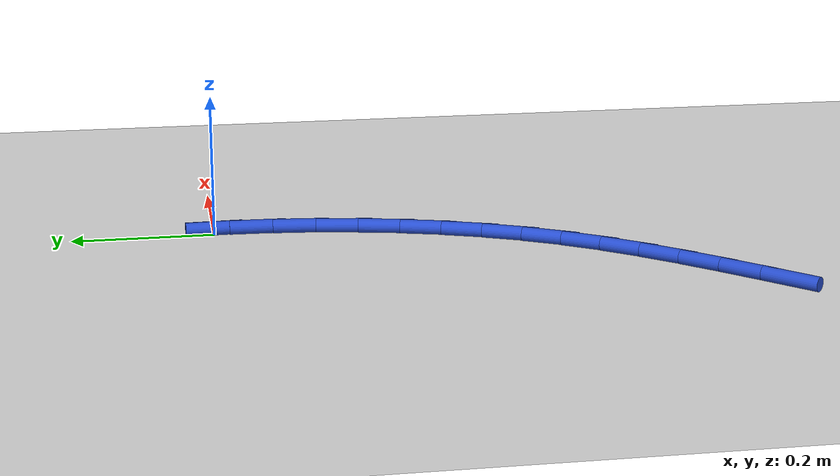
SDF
<sdf version="1.6">
 <world name="default">
  <model name="ground_plane">
   <static>1</static>
   <link name="link">
    <collision name="collision">
     <geometry><plane><normal>0 0 1</normal><size>100 100</size></plane></geometry>
     <surface><friction><ode><mu>100</mu><mu2>50</mu2></ode></friction></surface>
    </collision>
    <visual name="visual">
     <cast_shadows>0</cast_shadows>
     <geometry><plane><normal>0 0 1</normal><size>100 100</size></plane></geometry>
     <material>
      <script><uri>file://media/materials/scripts/gazebo.material</uri><name>Gazebo/WhiteGlow</name></script>
     </material>
    </visual>
   </link>
  </model>
  <model name="line">
   <link name="link_0">
    <pose>-1.3877787807814457e-17 5.551115123125783e-17 0.01 0 1.57 -1.5364739453692011</pose>
    <collision name="collision">
     <geometry><cylinder><radius>0.01</radius><length>0.08</length></cylinder></geometry>
    </collision>
    <visual name="visual">
     <material>
      <script><name>Gazebo/Blue</name><uri>file://media/materials/scripts/gazebo.material</uri></script>
     </material>
     <geometry><cylinder><radius>0.01</radius><length>0.08</length></cylinder></geometry>
    </visual>
   </link>
   <link name="link_116">
    <pose>-0.3409815144277638 -0.7309561444324738 0.01 0 1.57 0.785027971869206</pose>
    <collision name="collision">
     <geometry><cylinder><radius>0.01</radius><length>0.08</length></cylinder></geometry>
    </collision>
    <visual name="visual">
     <material>
      <script><name>Gazebo/Blue</name><uri>file://media/materials/scripts/gazebo.material</uri></script>
     </material>
     <geometry><cylinder><radius>0.01</radius><length>0.08</length></cylinder></geometry>
    </visual>
   </link>
   <link name="link_117">
    <pose>-0.29815786463319305 -0.6881641888111611 0.01 0 1.57 0.7992916494838977</pose>
    <collision name="collision">
     <geometry><cylinder><radius>0.01</radius><length>0.08</length></cylinder></geometry>
    </collision>
    <visual name="visual">
     <material>
      <script><name>Gazebo/Blue</name><uri>file://media/materials/scripts/gazebo.material</uri></script>
     </material>
     <geometry><cylinder><radius>0.01</radius><length>0.08</length></cylinder></geometry>
    </visual>
   </link>
   <link name="link_118">
    <pose>-0.2565358636151736 -0.6453692669798763 0.01 0 1.57 0.8276554505390632</pose>
    <collision name="collision">
     <geometry><cylinder><radius>0.01</radius><length>0.08</length></cylinder></geometry>
    </collision>
    <visual name="visual">
     <material>
      <script><name>Gazebo/Blue</name><uri>file://media/materials/scripts/gazebo.material</uri></script>
     </material>
     <geometry><cylinder><radius>0.01</radius><length>0.08</length></cylinder></geometry>
    </visual>
   </link>
   <link name="link_119">
    <pose>-0.21667283808898158 -0.601986400542989 0.01 0 1.57 0.8705613652888919</pose>
    <collision name="collision">
     <geometry><cylinder><radius>0.01</radius><length>0.08</length></cylinder></geometry>
    </collision>
    <visual name="visual">
     <material>
      <script><name>Gazebo/Blue</name><uri>file://media/materials/scripts/gazebo.material</uri></script>
     </material>
     <geometry><cylinder><radius>0.01</radius><length>0.08</length></cylinder></geometry>
    </visual>
   </link>
   <link name="link_120">
    <pose>-0.17912611476989115 -0.5574306111048666 0.01 0 1.57 0.928154938601592</pose>
    <collision name="collision">
     <geometry><cylinder><radius>0.01</radius><length>0.08</length></cylinder></geometry>
    </collision>
    <visual name="visual">
     <material>
      <script><name>Gazebo/Blue</name><uri>file://media/materials/scripts/gazebo.material</uri></script>
     </material>
     <geometry><cylinder><radius>0.01</radius><length>0.08</length></cylinder></geometry>
    </visual>
   </link>
   <link name="link_121">
    <pose>-0.14445302037317725 -0.511116920269877 0.01 0 1.57 0.9999980654008124</pose>
    <collision name="collision">
     <geometry><cylinder><radius>0.01</radius><length>0.08</length></cylinder></geometry>
    </collision>
    <visual name="visual">
     <material>
      <script><name>Gazebo/Blue</name><uri>file://media/materials/scripts/gazebo.material</uri></script>
     </material>
     <geometry><cylinder><radius>0.01</radius><length>0.08</length></cylinder></geometry>
    </visual>
   </link>
   <link name="link_122">
    <pose>-0.11321087203667296 -0.4624603641570693 0.01 0 1.57 1.0815209342898502</pose>
    <collision name="collision">
     <geometry><cylinder><radius>0.01</radius><length>0.08</length></cylinder></geometry>
    </collision>
    <visual name="visual">
     <material>
      <script><name>Gazebo/Blue</name><uri>file://media/materials/scripts/gazebo.material</uri></script>
     </material>
     <geometry><cylinder><radius>0.01</radius><length>0.08</length></cylinder></geometry>
    </visual>
   </link>
   <link name="link_123">
    <pose>-0.08583931838538295 -0.41105430635093343 0.01 0 1.57 1.1603506111646784</pose>
    <collision name="collision">
     <geometry><cylinder><radius>0.01</radius><length>0.08</length></cylinder></geometry>
    </collision>
    <visual name="visual">
     <material>
      <script><name>Gazebo/Blue</name><uri>file://media/materials/scripts/gazebo.material</uri></script>
     </material>
     <geometry><cylinder><radius>0.01</radius><length>0.08</length></cylinder></geometry>
    </visual>
   </link>
   <link name="link_124">
    <pose>-0.06236701342355382 -0.3571149756976084 0.01 0 1.57 1.2342498003687816</pose>
    <collision name="collision">
     <geometry><cylinder><radius>0.01</radius><length>0.08</length></cylinder></geometry>
    </collision>
    <visual name="visual">
     <material>
      <script><name>Gazebo/Blue</name><uri>file://media/materials/scripts/gazebo.material</uri></script>
     </material>
     <geometry><cylinder><radius>0.01</radius><length>0.08</length></cylinder></geometry>
    </visual>
   </link>
   <link name="link_125">
    <pose>-0.042732932041698576 -0.3009945103759029 0.01 0 1.57 1.3037014834230982</pose>
    <collision name="collision">
     <geometry><cylinder><radius>0.01</radius><length>0.08</length></cylinder></geometry>
    </collision>
    <visual name="visual">
     <material>
      <script><name>Gazebo/Blue</name><uri>file://media/materials/scripts/gazebo.material</uri></script>
     </material>
     <geometry><cylinder><radius>0.01</radius><length>0.08</length></cylinder></geometry>
    </visual>
   </link>
   <link name="link_126">
    <pose>-0.026876049130330402 -0.24304504856462567 0.01 0 1.57 1.3692710070964114</pose>
    <collision name="collision">
     <geometry><cylinder><radius>0.01</radius><length>0.08</length></cylinder></geometry>
    </collision>
    <visual name="visual">
     <material>
      <script><name>Gazebo/Blue</name><uri>file://media/materials/scripts/gazebo.material</uri></script>
     </material>
     <geometry><cylinder><radius>0.01</radius><length>0.08</length></cylinder></geometry>
    </visual>
   </link>
   <link name="link_127">
    <pose>-0.014735339579963199 -0.18361872844258764 0.01 0 1.57 1.4315640750279996</pose>
    <collision name="collision">
     <geometry><cylinder><radius>0.01</radius><length>0.08</length></cylinder></geometry>
    </collision>
    <visual name="visual">
     <material>
      <script><name>Gazebo/Blue</name><uri>file://media/materials/scripts/gazebo.material</uri></script>
     </material>
     <geometry><cylinder><radius>0.01</radius><length>0.08</length></cylinder></geometry>
    </visual>
   </link>
   <link name="link_128">
    <pose>-0.006249778281110119 -0.12306768818859776 0.01 0 1.57 1.4912005083705575</pose>
    <collision name="collision">
     <geometry><cylinder><radius>0.01</radius><length>0.08</length></cylinder></geometry>
    </collision>
    <visual name="visual">
     <material>
      <script><name>Gazebo/Blue</name><uri>file://media/materials/scripts/gazebo.material</uri></script>
     </material>
     <geometry><cylinder><radius>0.01</radius><length>0.08</length></cylinder></geometry>
    </visual>
   </link>
   <link name="link_129">
    <pose>-0.0013583401242845891 -0.06174406598146538 0.01 0 1.57 1.5488003498498857</pose>
    <collision name="collision">
     <geometry><cylinder><radius>0.01</radius><length>0.08</length></cylinder></geometry>
    </collision>
    <visual name="visual">
     <material>
      <script><name>Gazebo/Blue</name><uri>file://media/materials/scripts/gazebo.material</uri></script>
     </material>
     <geometry><cylinder><radius>0.01</radius><length>0.08</length></cylinder></geometry>
    </visual>
   </link>
   <link name="link_130">
    <pose>-1.3877787807814457e-17 -5.551115123125783e-17 0.01 0 1.57 -1.5366136961102548</pose>
    <collision name="collision">
     <geometry><cylinder><radius>0.01</radius><length>0.08</length></cylinder></geometry>
    </collision>
    <visual name="visual">
     <material>
      <script><name>Gazebo/Blue</name><uri>file://media/materials/scripts/gazebo.material</uri></script>
     </material>
     <geometry><cylinder><radius>0.01</radius><length>0.08</length></cylinder></geometry>
    </visual>
   </link>
  </model>
 </world>
</sdf>
